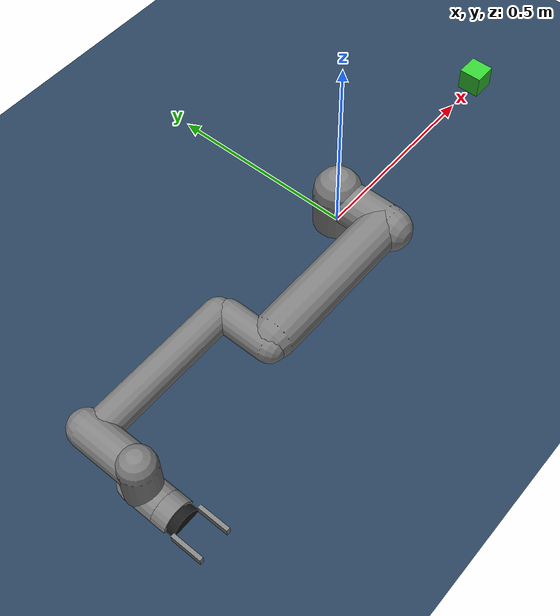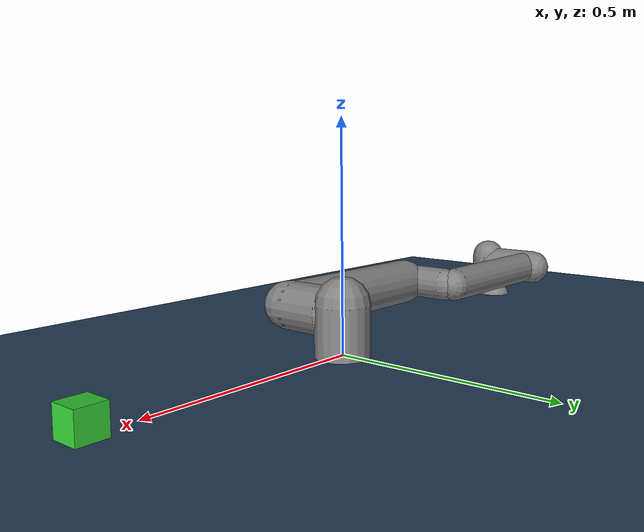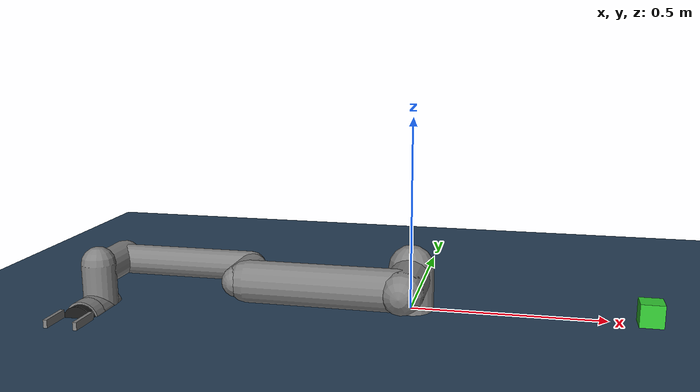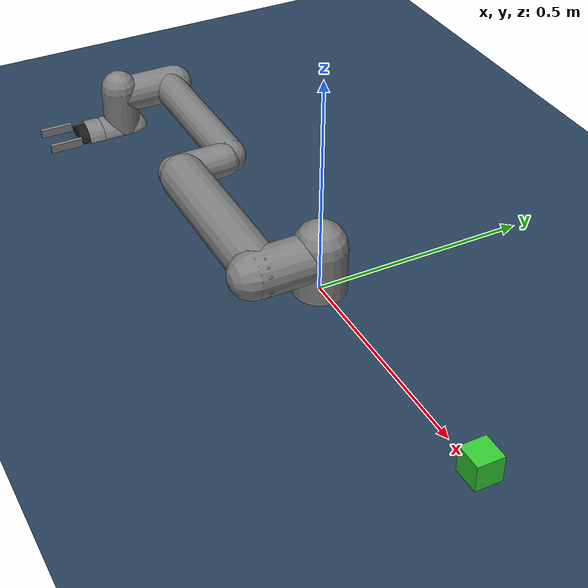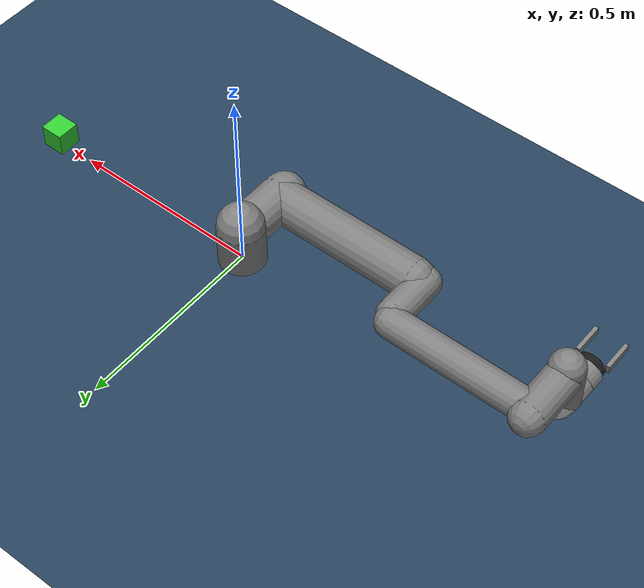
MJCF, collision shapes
<!-- 轨迹抓取 -->
<mujoco model="scene_catch">

  <compiler angle="radian" meshdir="assets/"/>
  <!-- 加载UR5本体模型 -->
  <include file="ur5_catch.xml"/>

  <!-- 仿真统计参数 -->
  <statistic center="0.3 0 0.4" extent="0.8"/>

  <!-- 视觉渲染配置 -->
  <visual>
    <headlight diffuse="0.6 0.6 0.6" ambient="0.1 0.1 0.1" specular="0 0 0"/>
    <rgba haze="0.15 0.25 0.35 1"/>
    <global azimuth="120" elevation="-20"/>
  </visual>

  <!-- 资源定义 -->
  <asset>
    <texture type="skybox" builtin="gradient" rgb1="0.3 0.5 0.7" rgb2="0 0 0" width="512" height="3072"/>
    <texture type="2d" name="groundplane" builtin="checker" mark="edge" rgb1="0.2 0.3 0.4" rgb2="0.1 0.2 0.3"
      markrgb="0.8 0.8 0.8" width="300" height="300"/>
    <material name="groundplane" texture="groundplane" texuniform="true" texrepeat="5 5" reflectance="0.2"/>

    <!-- 目标物体材质 -->
    <material name="object_mat" rgba="0.2 0.8 0.2 1"/>

  </asset>

  <!-- 世界结构 -->
  <worldbody>
    <!-- 光源 -->
    <light pos="0 0 3" dir="0 0 -1" directional="true"/>

    <!-- 地面 -->
    <geom name="floor" size="0 0 0.05" type="plane" material="groundplane" friction="1 0.005 0.0001"/>

    <!-- 正上方俯视相机 -->
    <camera name="top_camera" pos="0 0 2" mode="targetbody" target="base" fovy="45"/>

    <!-- 侧面观测相机 -->
    <camera name="side_camera" pos="1.5 0 1.0" quat="0.5 0.5 0.5 0.5" mode="track" target="target_object"/>

    <!-- 待抓取的立方体 -->
    <body name="target_object" pos="0.6 0 0.03">
      <!-- 尺寸（m） -->
      <geom name="cube" type="box" size="0.03 0.03 0.03" material="object_mat" contype="1" conaffinity="1"/>
      <!-- 惯性参数 -->
      <inertial pos="0 0 0" mass="0.1" diaginertia="0.0001 0.0001 0.0001"/>
      <joint name="object_free" type="free" pos="0 0 0"/>
    </body>

  </worldbody>

</mujoco>

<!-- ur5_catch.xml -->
<mujoco model="ur5">
  <!-- 编译器配置：弧度制，网格文件目录，自动计算关节限位 -->
  <compiler angle="radian" meshdir="assets" autolimits="true"/>

  <!-- 仿真选项：使用快速隐式积分器 -->
  <option integrator="implicitfast"/>

  <!-- 默认设置 -->
  <default>
    <default class="ur5">
      <!-- 材质 -->
      <material specular="0.5" shininess="0.25"/>

      <!-- 关节默认：绕Y轴，范围±2π，惯性0.1，物理阻尼5 -->
      <joint axis="0 1 0" range="-6.28319 6.28319" armature="0.1" damping="5"/>

      <!-- 执行器参数：PID控制器参数
              增益类型：固定
              偏置类型：仿射
              控制量范围：-2pi～2pi
              比例增益 = 2000
              偏置参数(I增益, D增益, 偏置) ="0 -2000 -400"
              力矩/力输出范围
      -->
      <general gaintype="fixed" biastype="affine" ctrlrange="-6.2831 6.2831" gainprm="2000" biasprm="0 -2000 -400" forcerange="-150 150"/>

      <default class="size3">
        <default class="size3_limited">
          <joint range="-3.1415 3.1415"/>
          <general ctrlrange="-3.1415 3.1415"/>
        </default>
      </default>
      <default class="size1">
        <general gainprm="500" biasprm="0 -500 -100" forcerange="-28 28"/>
      </default>
      <default class="visual">
        <geom type="mesh" contype="0" conaffinity="0" group="2"/>
      </default>
      <default class="collision">
        <geom type="capsule" group="3"/>
        <default class="eef_collision">
          <geom type="cylinder"/>
        </default>
      </default>
      <site size="0.001" rgba="0.5 0.5 0.5 0.3" group="4"/>
    </default>
  </default>

  <!-- 资产定义 -->
  <asset>
    <!-- 定义材料颜色 -->
    <material class="ur5" name="black" rgba="0.033 0.033 0.033 1"/>
    <material class="ur5" name="jointgray" rgba="0.278 0.278 0.278 1"/>
    <material class="ur5" name="linkgray" rgba="0.82 0.82 0.82 1"/>
    <material class="ur5" name="urblue" rgba="0.49 0.678 0.8 1"/>

    <!-- 导入OBJ网格文件 -->
    <mesh file="base_0.obj"/>
    <mesh file="base_1.obj"/>
    <mesh file="shoulder_0.obj"/>
    <mesh file="shoulder_1.obj"/>
    <mesh file="shoulder_2.obj"/>
    <mesh file="upperarm_0.obj"/>
    <mesh file="upperarm_1.obj"/>
    <mesh file="upperarm_2.obj"/>
    <mesh file="upperarm_3.obj"/>
    <mesh file="forearm_0.obj"/>
    <mesh file="forearm_1.obj"/>
    <mesh file="forearm_2.obj"/>
    <mesh file="forearm_3.obj"/>
    <mesh file="wrist1_0.obj"/>
    <mesh file="wrist1_1.obj"/>
    <mesh file="wrist1_2.obj"/>
    <mesh file="wrist2_0.obj"/>
    <mesh file="wrist2_1.obj"/>
    <mesh file="wrist2_2.obj"/>
    <mesh file="wrist3.obj"/>
  </asset>

  <!-- 世界结构 -->
  <worldbody>
    <light name="spotlight" mode="targetbodycom" target="wrist_2_link" pos="0 -1 2"/>
    <body name="base" quat="0 0 0 -1" childclass="ur5">
      <!-- mass质量，pos质心，diaginertia转动惯量 -->
      <inertial mass="4.0" pos="0 0 0" diaginertia="0.00443333156 0.00443333156 0.0072"/>
      <geom mesh="base_0" material="black" class="visual"/>
      <geom mesh="base_1" material="jointgray" class="visual"/>

      <body name="shoulder_link" pos="0 0 0.089159">
        <inertial mass="3.7" pos="0.0 -0.00193 -0.02561" diaginertia="0.01497235833 0.01497235833 0.01040625"/>
        <joint name="shoulder_pan_joint" class="size3" axis="0 0 1"/>
        <geom mesh="shoulder_0" material="urblue" class="visual"/>
        <geom mesh="shoulder_1" material="black" class="visual"/>
        <geom mesh="shoulder_2" material="jointgray" class="visual"/>
        <geom class="collision" size="0.06 0.06" pos="0 0 -0.04"/>

        <body name="upper_arm_link" pos="0 0.138 0" quat="1 0 1 0">
          <inertial mass="8.3930" pos="-0.2125 0.0 0.11336" diaginertia="0.13388583542 0.13388583542 0.0151074"/>
          <joint name="shoulder_lift_joint" class="size3"/>
          <geom mesh="upperarm_0" material="linkgray" class="visual"/>
          <geom mesh="upperarm_1" material="black" class="visual"/>
          <geom mesh="upperarm_2" material="jointgray" class="visual"/>
          <geom mesh="upperarm_3" material="urblue" class="visual"/>
          <geom class="collision" pos="0 -0.04 0" quat="1 1 0 0" size="0.054 0.06"/>
          <geom class="collision" size="0.054 0.2" pos="0 0 0.2"/>

          <body name="forearm_link" pos="0 -0.131 0.425">
            <inertial mass="2.33" pos="-0.24225 0.0 0.0265" diaginertia="0.03121680352 0.03121680352 0.004095"/>
            <joint name="elbow_joint" class="size3_limited"/>
            <geom mesh="forearm_0" material="urblue" class="visual"/>
            <geom mesh="forearm_1" material="linkgray" class="visual"/>
            <geom mesh="forearm_2" material="black" class="visual"/>
            <geom mesh="forearm_3" material="jointgray" class="visual"/>
            <geom class="collision" pos="0 0.08 0" quat="1 1 0 0" size="0.040 0.06"/>
            <geom class="collision" size="0.040 0.19" pos="0 0 0.2"/>

            <body name="wrist_1_link" pos="0 0 0.392" quat="1 0 1 0">
              <inertial mass="1.2190" pos="0.0 -0.01634 -0.0018" diaginertia="0.00201388958 0.00201388958 0.0021942"/>
              <joint name="wrist_1_joint" class="size1"/>
              <geom mesh="wrist1_0" material="black" class="visual"/>
              <geom mesh="wrist1_1" material="urblue" class="visual"/>
              <geom mesh="wrist1_2" material="jointgray" class="visual"/>
              <geom class="collision" pos="0 0.05 0" quat="1 1 0 0" size="0.045 0.07"/>

              <body name="wrist_2_link" pos="0 0.127 0">
                <inertial mass="1.2190" pos="0.0 0.01634 -0.0018" diaginertia="0.00183103958 0.00183103958 0.0021942"/>
                <joint name="wrist_2_joint" axis="0 0 1" class="size1"/>
                <geom mesh="wrist2_0" material="black" class="visual"/>
                <geom mesh="wrist2_1" material="urblue" class="visual"/>
                <geom mesh="wrist2_2" material="jointgray" class="visual"/>
                <geom class="collision" size="0.045 0.06" pos="0 0 0.04"/>
                <geom class="collision" pos="0 0.02 0.1" quat="1 1 0 0" size="0.045 0.04"/>

                <body name="wrist_3_link" pos="0 0 0.1">
                  <inertial mass="0.1879" pos="0.0 0.0 -0.001159" diaginertia="8.06247583e-05 8.06247583e-05 0.0001321171875"/>
                  <joint name="wrist_3_joint" class="size1"/>
                  <geom material="linkgray" mesh="wrist3" class="visual"/>
                  <geom class="eef_collision" pos="0 0.08 0" quat="1 1 0 0" size="0.045 0.02"/>
                  <site name="attachment_site" pos="0 0.1 0" quat="-1 1 0 0"/>

                  <!-- 腕部相机 -->
                  <!-- pos: 相机位置微调，避免被夹爪挡住 -->
                  <!-- quat: 旋转相机朝向，让它看向手指尖方向 -->
                  <!-- fovy: 视野角度，45-60度适合近距离抓取 -->
                  <camera name="wrist_camera" pos="0 0.1 0.02" quat="0.707 0.707 0 0" fovy="50"/>

                  <body name="gripper_base" pos="0 0.0823 0" quat="-0.707 0.707 0 0">
                    <!-- 夹爪基座 (黑色圆柱) -->
                    <inertial pos="0 0 0" mass="0.3" diaginertia="0.001 0.001 0.001"/>
                    <geom type="cylinder" size="0.04 0.04" rgba="0.1 0.1 0.1 1"/>
                    <!-- 左手指 (滑动关节) -->
                    <body name="left_finger" pos="-0.04 0 0.08">
                      <inertial pos="0 0 0" mass="0.1" diaginertia="0.001 0.001 0.001"/>
                      <!-- 限制滑动范围 0 到 0.04米 -->
                      <joint name="finger_joint1" type="slide" axis="1 0 0" range="0 0.04" damping="1"/>
                      <geom type="box" size="0.005 0.03 0.04" rgba="0.5 0.5 0.5 1" friction="1.5 0.05 0.001"/>
                    </body>
                    <!-- 右手指 (滑动关节) -->
                    <body name="right_finger" pos="0.04 0 0.08">
                      <inertial pos="0 0 0" mass="0.1" diaginertia="0.001 0.001 0.001"/>
                      <joint name="finger_joint2" type="slide" axis="-1 0 0" range="0 0.04" damping="1"/>
                      <geom type="box" size="0.005 0.03 0.04" rgba="0.5 0.5 0.5 1" friction="1.5 0.05 0.001"/>
                    </body>
                    <!-- TCP (Tool Center Point) -->
                    <!-- 坐标系相对于 gripper_base -->
                    <site name="tcp" pos="0 0 0.06" size="0.005" rgba="0 1 0 0.5" group="0"/>
                  </body>
                </body>
              </body>
            </body>
          </body>
        </body>
      </body>
    </body>
  </worldbody>

  <!-- 执行器 -->
  <actuator>
    <general class="size3" name="shoulder_pan" joint="shoulder_pan_joint"/>
    <general class="size3" name="shoulder_lift" joint="shoulder_lift_joint"/>
    <general class="size3_limited" name="elbow" joint="elbow_joint"/>
    <general class="size1" name="wrist_1" joint="wrist_1_joint"/>
    <general class="size1" name="wrist_2" joint="wrist_2_joint"/>
    <general class="size1" name="wrist_3" joint="wrist_3_joint"/>

    <!-- 夹爪电机 -->
    <!-- 使用位置控制，kp设大一点保证夹紧力 -->
    <position name="close_gripper" joint="finger_joint1" kp="1000" kv="20" ctrlrange="0 0.04" forcerange="-20 20"/>
    <!-- 为了简单，这里只驱动一个关节，如果是完全物理仿真通常需要定义两个，或者使用等式约束(equality)让两个手指同步 -->
    <position name="close_gripper_mirror" joint="finger_joint2" kp="1000" kv="20" ctrlrange="0 0.04" forcerange="-20 20"/>

  </actuator>

  <!-- 关键帧 -->
  <keyframe>
    <key name="home" qpos="-1.5708 -1.5708 1.5708 -1.5708 -1.5708 0" ctrl="-1.5708 -1.5708 1.5708 -1.5708 -1.5708 0"/>
  </keyframe>
</mujoco>
